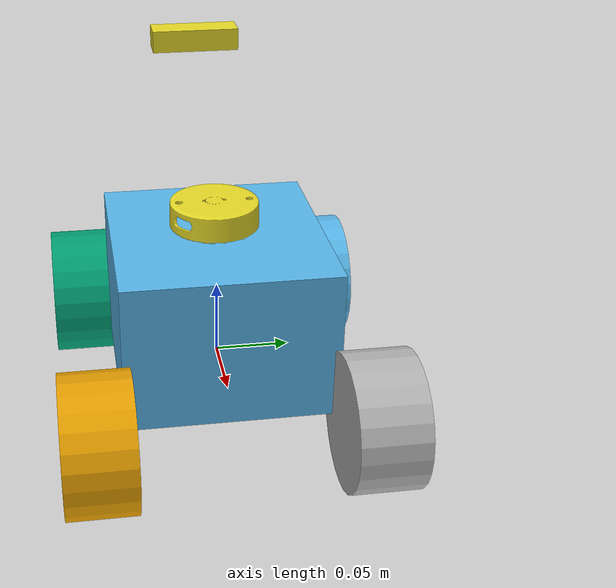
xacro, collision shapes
<?xml version="1.0"?>

<robot name="limo_s2" xmlns:xacro="http://ros.org/wiki/xacro">

    <xacro:include filename="$(find limo_s2_description)/urdf/limo_xacro.xacro" />
    <xacro:include filename="$(find limo_s2_description)/urdf/limo_s2.gazebo" />

    <!-- Variables -->
    <xacro:property name="M_PI" value="3.14159"/>

    <!-- Vehicle Geometries -->
    <xacro:property name="base_x_size" value="0.1" />
    <xacro:property name="base_y_size" value="0.1" />
    <xacro:property name="base_z_size" value="0.1" />

    <xacro:property name="wheelbase" value="0.2"/>
    <xacro:property name="track" value="0.13"/>
    <xacro:property name="wheel_vertical_offset" value="-0.10" />
    <xacro:property name="base_mass" value="2.1557"/>

    <xacro:property name="wheel_length" value="0.045" />
    <xacro:property name="wheel_radius" value="0.045" />
  <link name="base_footprint"/>

  <joint name="base_joint" type="fixed">
    <parent link="base_footprint"/>
    <child link="base_link"/>
    <origin xyz="0.0 0.0 0.1" rpy="0 0 0"/>
  </joint>
    <!-- Base link -->
    <link name="base_link">
        <visual>
            <origin xyz="0.095 0 -0.035" rpy="0 0 1.57" />
            <geometry>
                <mesh filename="package://limo_s2_description/meshes/dae/base_link_2.dae" scale="0.001 0.001 0.001"/>
            </geometry>
        </visual>
        <collision>
            <!--origin xyz="0 0 -0.15" rpy="0 0 1.57" /-->
            <origin xyz="0 0 -0.06" rpy="0 0 0" />
          <geometry>
              <box size="0.15 0.14 0.1"/>
          </geometry>
        </collision>
    </link>

    <link name="inertial_link">
        <inertial>
            <origin xyz="0.0 0.0 0.0" />
            <mass value="2.1557" />
            <inertia ixx="0.24" ixy="0" ixz="0"
                     iyy="0.96" iyz="0"
                     izz="0.96" />
        </inertial>
    </link>

    <joint name="inertial_joint" type="fixed">
        <origin xyz="0 0 0" rpy="0 0 0" />
        <parent link="base_link" />
        <child link="inertial_link" />
    </joint>

    <xacro:limo_laser parent_prefix="base_link" frame_prefix="laser">
        <origin xyz="-0.01 0 -0.01" rpy="0 0 0"/>
    </xacro:limo_laser>

    <xacro:limo_depth_camera parent_prefix="base_link" frame_prefix="depth_camera">
        <origin xyz="-0.11 0 0.090  " rpy="0 -0.436 0"/>
    </xacro:limo_depth_camera>

    <xacro:limo_imu parent_prefix="base_link" frame_prefix="imu">
        <origin xyz="0.0 0 -0.1" rpy="0 0 0"/>
    </xacro:limo_imu>

    <xacro:limo_wheel_1 parent_prefix="base_link" wheel_prefix="front_left" reflect="1">
        <origin xyz="${wheelbase/2} ${track/2} ${wheel_vertical_offset}" rpy="0 0  0" />
    </xacro:limo_wheel_1>

    <xacro:limo_wheel_2 parent_prefix="base_link" wheel_prefix="front_right" reflect="-1">
        <origin xyz="${wheelbase/2} ${-track/2} ${wheel_vertical_offset}" rpy="${M_PI} 0 0" />
    </xacro:limo_wheel_2>

    <xacro:limo_wheel_2 parent_prefix="base_link" wheel_prefix="rear_left" reflect="1">
        <origin xyz="${-wheelbase/2} ${track/2} ${wheel_vertical_offset}" rpy="0 0 0" />
    </xacro:limo_wheel_2>

    <xacro:limo_wheel_1 parent_prefix="base_link" wheel_prefix="rear_right" reflect="-1">
        <origin xyz="${-wheelbase/2} ${-track/2} ${wheel_vertical_offset}" rpy="${M_PI} 0 0" />
    </xacro:limo_wheel_1>
</robot>

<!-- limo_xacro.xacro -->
<robot name="limo_xacro" xmlns:xacro="http://ros.org/wiki/xacro">
    <xacro:macro name="limo_wheel_1" params="parent_prefix wheel_prefix reflect *joint_pose">
        <link name="${wheel_prefix}_wheel_link">
            <inertial>
                <origin xyz="0 0 0" />
                <mass value="0.5" />
                <inertia ixx="0.01055" ixy="0" ixz="0" iyy="0.00075" iyz="0" izz="0.01055" />
            </inertial>
            <visual>
                <origin xyz="0.01 -0.064 0.064" rpy="0 0 -1.57" />
                <geometry>
                    <mesh filename="package://limo_s2_description/meshes/dae/mailun_1.dae" />
                </geometry>
            </visual>
            <collision>
              <origin xyz="0 ${wheel_length/2} 0" rpy="1.57 0 0" />
              <geometry>
                  <cylinder length="${wheel_length}" radius="${wheel_radius}" />
              </geometry>
            </collision>
        </link>

        <joint name="${wheel_prefix}_wheel" type="continuous">
            <parent link="${parent_prefix}"/>
            <child link="${wheel_prefix}_wheel_link"/>
            <xacro:insert_block name="joint_pose"/>
            <axis xyz="0 ${reflect*1} 0"/>
        </joint>
    </xacro:macro>

    <xacro:macro name="limo_wheel_2" params="parent_prefix wheel_prefix reflect *joint_pose">
        <link name="${wheel_prefix}_wheel_link">
            <inertial>
                <origin xyz="0 0 0" />
                <mass value="0.5" />
                <inertia ixx="0.01055" ixy="0" ixz="0" iyy="0.00075" iyz="0" izz="0.01055" />
            </inertial>
            <visual>
                <origin xyz="0 0 0" rpy="0 0 0" />
                <geometry>
                    <mesh filename="package://limo_s2_description/meshes/dae/mailun_2.dae" />
                </geometry>
            </visual>
            <collision>
              <origin xyz="0 ${wheel_length/2} 0" rpy="1.57 0 0" />
              <geometry>
                  <cylinder length="${wheel_length}" radius="${wheel_radius}" />
              </geometry>
            </collision>
        </link>

        <joint name="${wheel_prefix}_wheel" type="continuous">
            <parent link="${parent_prefix}"/>
            <child link="${wheel_prefix}_wheel_link"/>
            <xacro:insert_block name="joint_pose"/>
            <axis xyz="0 ${reflect*1} 0"/>
        </joint>
    </xacro:macro>

    <xacro:macro name="limo_laser" params="parent_prefix frame_prefix *joint_pose">
        <link name='${frame_prefix}_link'>
            <pose>0 0 0 0 0 0</pose>
            <inertial>
                <mass value="0.1"/>
                <origin xyz="0 0 0" rpy="0 0 0"/>
                <inertia
                    ixx="1e-6" ixy="0" ixz="0"
                    iyy="1e-6" iyz="0"
                    izz="1e-6"
                />
            </inertial>
            <visual name='laser_visual'>
                <origin xyz="0 0 0" rpy="0 0 0"/>
                <geometry>
                    <mesh filename="package://limo_s2_description/meshes/laser_Link.STL" />
                </geometry>
                <material name=''>
                    <ambient>0.1 0.1 0.1 1</ambient>
                    <diffuse>0.1 0.1 0.2 1</diffuse>
                    <specular>0 0 0 0</specular>
                    <emissive>0 0 0 1</emissive>
                </material>
            </visual>
            <collision name='laser_collision'>
                <origin xyz="0 0 0" rpy="0 0 0"/>
                <geometry>
                    <mesh filename="package://limo_s2_description/meshes/laser_Link.STL" />
                </geometry>
            </collision>
        </link>
        <joint type="fixed" name="laser_joint">
            <xacro:insert_block name="joint_pose"/>
            <child link="${frame_prefix}_link"/>
            <parent link="${parent_prefix}"/>
        </joint>
        <gazebo reference="${frame_prefix}_link">
            <material>Gazebo/Yellow</material>
        </gazebo>
    </xacro:macro>

    <xacro:macro name="limo_depth_camera" params="parent_prefix frame_prefix *joint_pose">
        <link name='${frame_prefix}_link'>
            <pose>0 0 0 0 0 0</pose>
            <inertial>
                <mass value="0.1"/>
                <origin xyz="0.0 0 0" rpy="0 0 0"/>
                <inertia
                    ixx="1e-6" ixy="0" ixz="0"
                    iyy="1e-6" iyz="0"
                    izz="1e-6"
                />
            </inertial>
            <visual name='depth_camera_visual'>
                <origin xyz="0.21 0 -0.13" rpy="0 0 1.57 "/>
                <geometry>
                    <mesh filename="package://limo_s2_description/meshes/dae/camera.dae" />
                </geometry>
                <material name=''>
                    <ambient>0.1 0.1 0.1 1</ambient>
                    <diffuse>0.1 0.1 0.2 1</diffuse>
                    <specular>0 0 0 0</specular>
                    <emissive>0 0 0 1</emissive>
                </material>
            </visual>
            <collision name='depth_camera_collision'>
                <origin xyz="0 0 0" rpy="0 0.436 0"/>
                <geometry>
                    <box size="0.02 0.06 0.015"/>
                </geometry>
            </collision>
        </link>

        <joint type="fixed" name="depth_camera_joint">
            <xacro:insert_block name="joint_pose"/>
            <child link="${frame_prefix}_link"/>
            <parent link="${parent_prefix}"/>
        </joint>
        <link name="depth_link"></link>

        <joint name="${frame_prefix}_to_camera_joint" type="fixed">
            <origin xyz="0 0 0" rpy="${-M_PI/2} 0 ${-M_PI/2} "/>
            <parent link="${frame_prefix}_link"/>
            <child link="depth_link"/>
          </joint>

        <gazebo reference="${frame_prefix}_link">
            <material>Gazebo/Yellow</material>
        </gazebo>
    </xacro:macro>

    <xacro:macro name="limo_imu" params="parent_prefix frame_prefix  *joint_pose">
        <link name='${frame_prefix}_link'>
            <pose>0 0 0 0 0 0</pose>
            <inertial>
                <mass value="0.01"/>
                <origin xyz="0.0 0 0" rpy="0 0 0"/>
                <inertia
                    ixx="1e-7" ixy="0" ixz="0"
                    iyy="1e-7" iyz="0"
                    izz="1e-7"
                />
            </inertial>
            <visual name='imu_visual'>
                <origin xyz="0 0 0" rpy="0 0 0"/>
                <geometry>
                    <box size="0.001 0.001 0.001"/>
                </geometry>
                <material name=''>
                    <ambient>0.1 0.1 0.1 1</ambient>
                    <diffuse>0.1 0.1 0.2 1</diffuse>
                    <specular>0 0 0 0</specular>
                    <emissive>0 0 0 1</emissive>
                </material>
            </visual>
            <collision name='imu_collision'>
                <origin xyz="0 0 0" rpy="0 0 0"/>
                <geometry>
                    <box size="0.001 0.001 0.001"/>
                </geometry>
            </collision>
        </link>
        <joint type="fixed" name="imu_joint">
            <xacro:insert_block name="joint_pose"/>
            <child link="${frame_prefix}_link"/>
            <parent link="${parent_prefix}"/>
        </joint>
        <gazebo reference="${frame_prefix}_link">
            <material>Gazebo/Yellow</material>
        </gazebo>
    </xacro:macro>
</robot>
